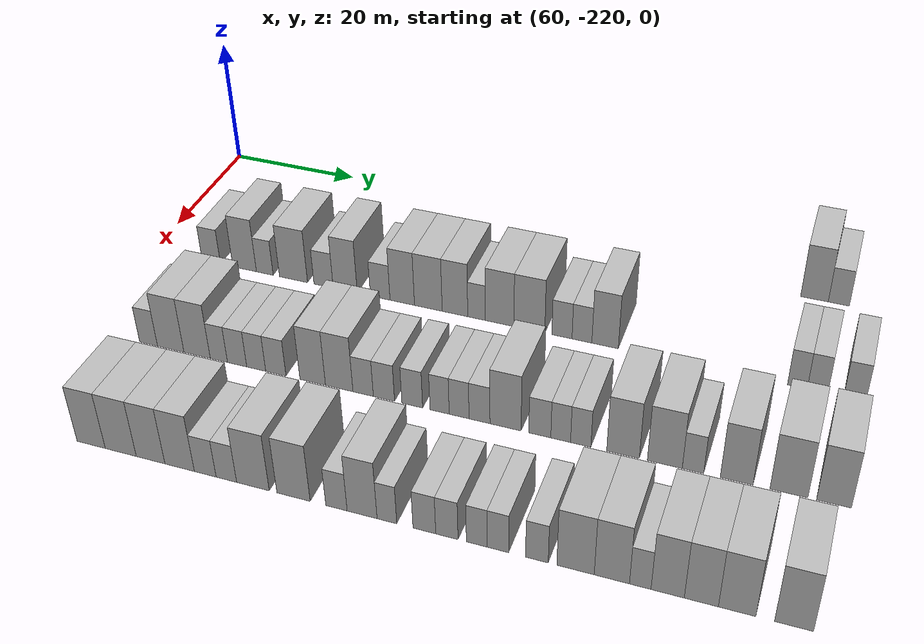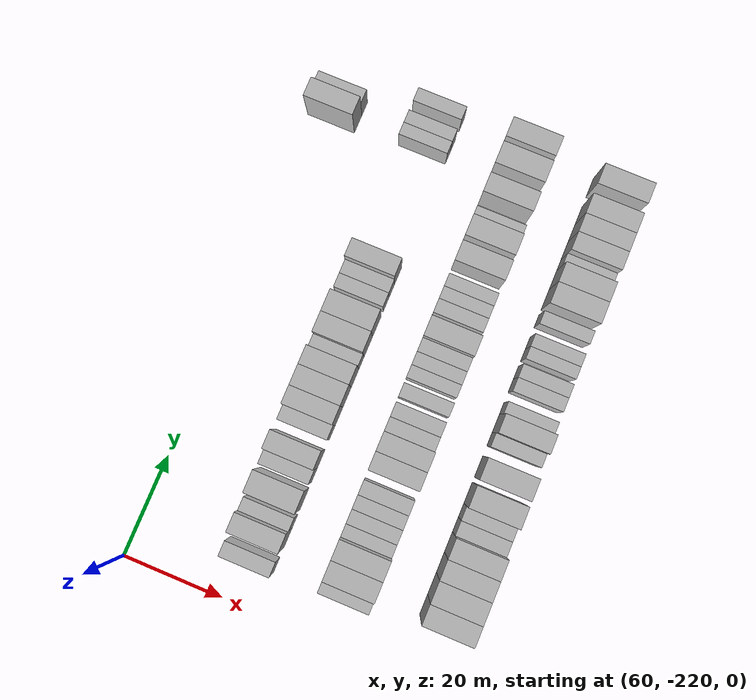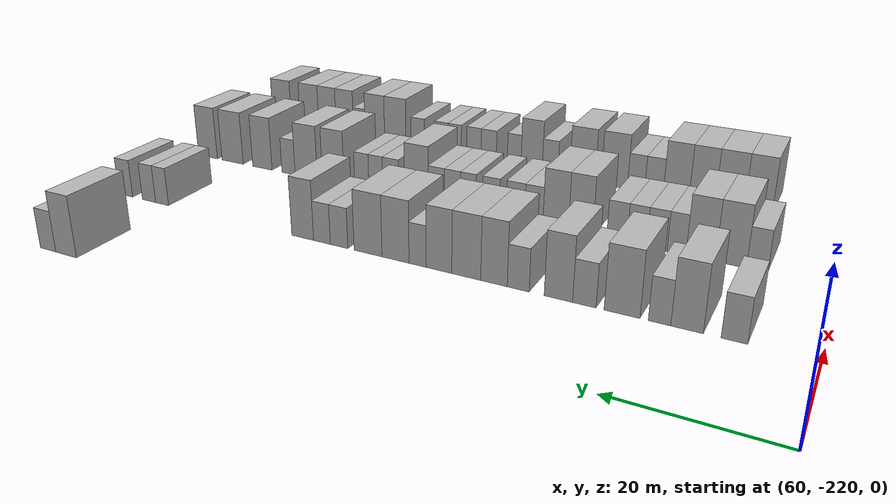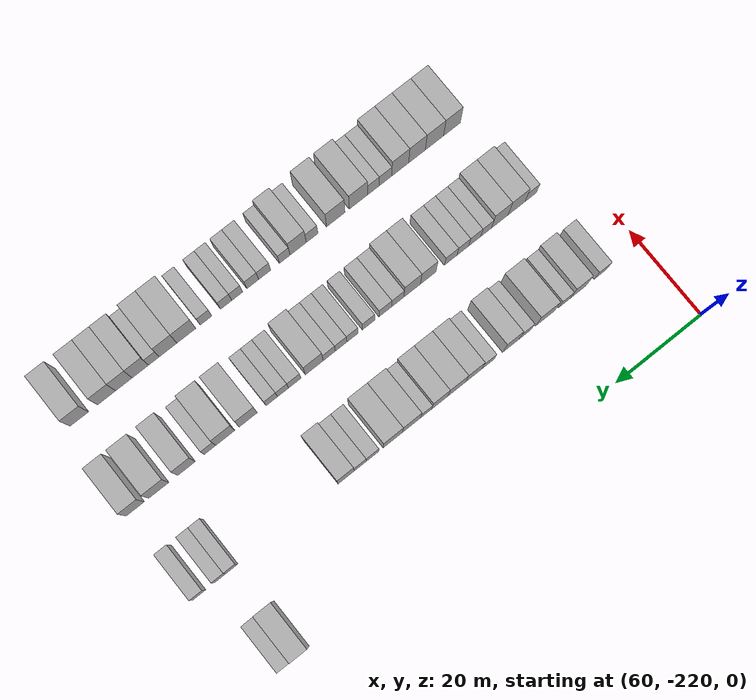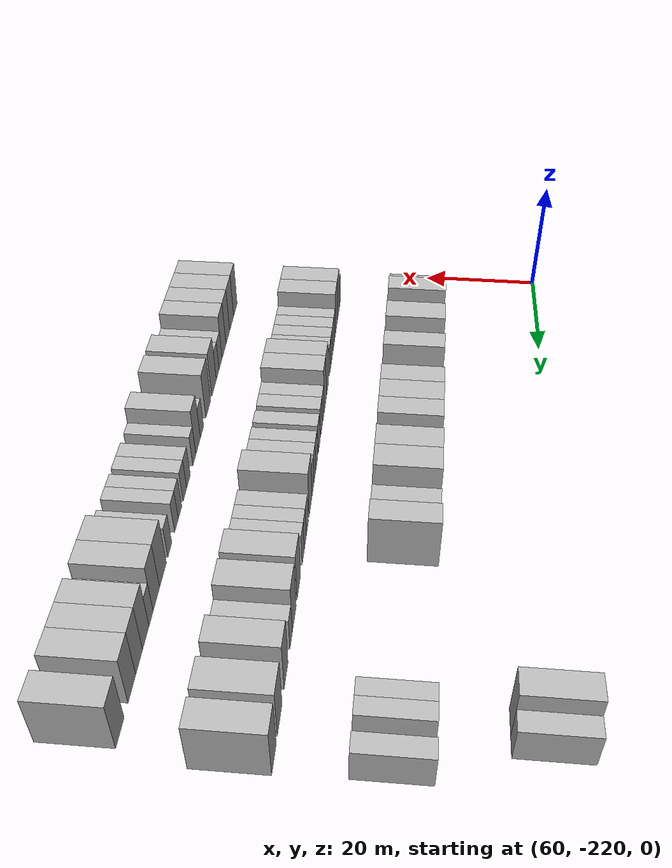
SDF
<sdf version="1.6">
 <world name="default">
  <model name="building_413">
   <static>1</static>
   <pose>63.0000 -126.3045 0 0.000000 0.000000 0.000000</pose>
   <link name="link">
    <pose>0 0 4.50 0 0 0</pose>
    <collision name="collision"><geometry><box><size>10.0000 3.8387 9.0000</size></box></geometry></collision>
    <visual name="visual">
     <cast_shadows>0</cast_shadows>
     <geometry><box><size>10.0000 3.8387 9.0000</size></box></geometry>
     <material>
      <script>
       <uri>model://HANNAS_wall/materials/scripts</uri>
       <uri>model://HANNAS_wall/materials/textures</uri>
       <name>vrc/HANNAS_wall</name>
      </script>
     </material>
    </visual>
   </link>
  </model>
  <model name="building_414">
   <static>1</static>
   <pose>63.0000 -122.9303 0 0.000000 0.000000 0.000000</pose>
   <link name="link">
    <pose>0 0 3.00 0 0 0</pose>
    <collision name="collision"><geometry><box><size>10.0000 2.9096 6.0000</size></box></geometry></collision>
    <visual name="visual">
     <cast_shadows>0</cast_shadows>
     <geometry><box><size>10.0000 2.9096 6.0000</size></box></geometry>
     <material>
      <script>
       <uri>model://HANNAS_wall/materials/scripts</uri>
       <uri>model://HANNAS_wall/materials/textures</uri>
       <name>vrc/HANNAS_wall</name>
      </script>
     </material>
    </visual>
   </link>
  </model>
  <model name="building_563">
   <static>1</static>
   <pose>82.0000 -210.6183 0 0.000000 0.000000 0.000000</pose>
   <link name="link">
    <pose>0 0 3.00 0 0 0</pose>
    <collision name="collision"><geometry><box><size>10.0000 2.9675 6.0000</size></box></geometry></collision>
    <visual name="visual">
     <cast_shadows>0</cast_shadows>
     <geometry><box><size>10.0000 2.9675 6.0000</size></box></geometry>
     <material>
      <script>
       <uri>model://HANNAS_wall/materials/scripts</uri>
       <uri>model://HANNAS_wall/materials/textures</uri>
       <name>vrc/HANNAS_wall</name>
      </script>
     </material>
    </visual>
   </link>
  </model>
  <model name="building_564">
   <static>1</static>
   <pose>82.0000 -205.2464 0 0.000000 0.000000 0.000000</pose>
   <link name="link">
    <pose>0 0 4.50 0 0 0</pose>
    <collision name="collision"><geometry><box><size>10.0000 3.7763 9.0000</size></box></geometry></collision>
    <visual name="visual">
     <cast_shadows>0</cast_shadows>
     <geometry><box><size>10.0000 3.7763 9.0000</size></box></geometry>
     <material>
      <script>
       <uri>model://HANNAS_wall/materials/scripts</uri>
       <uri>model://HANNAS_wall/materials/textures</uri>
       <name>vrc/HANNAS_wall</name>
      </script>
     </material>
    </visual>
   </link>
  </model>
  <model name="building_565">
   <static>1</static>
   <pose>82.0000 -202.0254 0 0.000000 0.000000 0.000000</pose>
   <link name="link">
    <pose>0 0 3.00 0 0 0</pose>
    <collision name="collision"><geometry><box><size>10.0000 2.6658 6.0000</size></box></geometry></collision>
    <visual name="visual">
     <cast_shadows>0</cast_shadows>
     <geometry><box><size>10.0000 2.6658 6.0000</size></box></geometry>
     <material>
      <script>
       <uri>model://HANNAS_wall/materials/scripts</uri>
       <uri>model://HANNAS_wall/materials/textures</uri>
       <name>vrc/HANNAS_wall</name>
      </script>
     </material>
    </visual>
   </link>
  </model>
  <model name="building_566">
   <static>1</static>
   <pose>82.0000 -197.4881 0 0.000000 0.000000 0.000000</pose>
   <link name="link">
    <pose>0 0 4.50 0 0 0</pose>
    <collision name="collision"><geometry><box><size>10.0000 4.4088 9.0000</size></box></geometry></collision>
    <visual name="visual">
     <cast_shadows>0</cast_shadows>
     <geometry><box><size>10.0000 4.4088 9.0000</size></box></geometry>
     <material>
      <script>
       <uri>model://HANNAS_wall/materials/scripts</uri>
       <uri>model://HANNAS_wall/materials/textures</uri>
       <name>vrc/HANNAS_wall</name>
      </script>
     </material>
    </visual>
   </link>
  </model>
  <model name="building_567">
   <static>1</static>
   <pose>82.0000 -192.7942 0 0.000000 0.000000 0.000000</pose>
   <link name="link">
    <pose>0 0 3.00 0 0 0</pose>
    <collision name="collision"><geometry><box><size>10.0000 2.9792 6.0000</size></box></geometry></collision>
    <visual name="visual">
     <cast_shadows>0</cast_shadows>
     <geometry><box><size>10.0000 2.9792 6.0000</size></box></geometry>
     <material>
      <script>
       <uri>model://HANNAS_wall/materials/scripts</uri>
       <uri>model://HANNAS_wall/materials/textures</uri>
       <name>vrc/HANNAS_wall</name>
      </script>
     </material>
    </visual>
   </link>
  </model>
  <model name="building_568">
   <static>1</static>
   <pose>82.0000 -189.4535 0 0.000000 0.000000 0.000000</pose>
   <link name="link">
    <pose>0 0 4.50 0 0 0</pose>
    <collision name="collision"><geometry><box><size>10.0000 3.7021 9.0000</size></box></geometry></collision>
    <visual name="visual">
     <cast_shadows>0</cast_shadows>
     <geometry><box><size>10.0000 3.7021 9.0000</size></box></geometry>
     <material>
      <script>
       <uri>model://HANNAS_wall/materials/scripts</uri>
       <uri>model://HANNAS_wall/materials/textures</uri>
       <name>vrc/HANNAS_wall</name>
      </script>
     </material>
    </visual>
   </link>
  </model>
  <model name="building_569">
   <static>1</static>
   <pose>82.0000 -184.1199 0 0.000000 0.000000 0.000000</pose>
   <link name="link">
    <pose>0 0 3.00 0 0 0</pose>
    <collision name="collision"><geometry><box><size>10.0000 2.9651 6.0000</size></box></geometry></collision>
    <visual name="visual">
     <cast_shadows>0</cast_shadows>
     <geometry><box><size>10.0000 2.9651 6.0000</size></box></geometry>
     <material>
      <script>
       <uri>model://HANNAS_wall/materials/scripts</uri>
       <uri>model://HANNAS_wall/materials/textures</uri>
       <name>vrc/HANNAS_wall</name>
      </script>
     </material>
    </visual>
   </link>
  </model>
  <model name="building_570">
   <static>1</static>
   <pose>82.0000 -180.7996 0 0.000000 0.000000 0.000000</pose>
   <link name="link">
    <pose>0 0 4.50 0 0 0</pose>
    <collision name="collision"><geometry><box><size>10.0000 3.6754 9.0000</size></box></geometry></collision>
    <visual name="visual">
     <cast_shadows>0</cast_shadows>
     <geometry><box><size>10.0000 3.6754 9.0000</size></box></geometry>
     <material>
      <script>
       <uri>model://HANNAS_wall/materials/scripts</uri>
       <uri>model://HANNAS_wall/materials/textures</uri>
       <name>vrc/HANNAS_wall</name>
      </script>
     </material>
    </visual>
   </link>
  </model>
  <model name="building_571">
   <static>1</static>
   <pose>82.0000 -176.9028 0 0.000000 0.000000 0.000000</pose>
   <link name="link">
    <pose>0 0 4.50 0 0 0</pose>
    <collision name="collision"><geometry><box><size>10.0000 4.1184 9.0000</size></box></geometry></collision>
    <visual name="visual">
     <cast_shadows>0</cast_shadows>
     <geometry><box><size>10.0000 4.1184 9.0000</size></box></geometry>
     <material>
      <script>
       <uri>model://HANNAS_wall/materials/scripts</uri>
       <uri>model://HANNAS_wall/materials/textures</uri>
       <name>vrc/HANNAS_wall</name>
      </script>
     </material>
    </visual>
   </link>
  </model>
  <model name="building_572">
   <static>1</static>
   <pose>82.0000 -172.9688 0 0.000000 0.000000 0.000000</pose>
   <link name="link">
    <pose>0 0 4.50 0 0 0</pose>
    <collision name="collision"><geometry><box><size>10.0000 3.7495 9.0000</size></box></geometry></collision>
    <visual name="visual">
     <cast_shadows>0</cast_shadows>
     <geometry><box><size>10.0000 3.7495 9.0000</size></box></geometry>
     <material>
      <script>
       <uri>model://HANNAS_wall/materials/scripts</uri>
       <uri>model://HANNAS_wall/materials/textures</uri>
       <name>vrc/HANNAS_wall</name>
      </script>
     </material>
    </visual>
   </link>
  </model>
  <model name="building_573">
   <static>1</static>
   <pose>82.0000 -169.8107 0 0.000000 0.000000 0.000000</pose>
   <link name="link">
    <pose>0 0 3.00 0 0 0</pose>
    <collision name="collision"><geometry><box><size>10.0000 2.5668 6.0000</size></box></geometry></collision>
    <visual name="visual">
     <cast_shadows>0</cast_shadows>
     <geometry><box><size>10.0000 2.5668 6.0000</size></box></geometry>
     <material>
      <script>
       <uri>model://HANNAS_wall/materials/scripts</uri>
       <uri>model://HANNAS_wall/materials/textures</uri>
       <name>vrc/HANNAS_wall</name>
      </script>
     </material>
    </visual>
   </link>
  </model>
  <model name="building_574">
   <static>1</static>
   <pose>82.0000 -166.4629 0 0.000000 0.000000 0.000000</pose>
   <link name="link">
    <pose>0 0 4.50 0 0 0</pose>
    <collision name="collision"><geometry><box><size>10.0000 4.1288 9.0000</size></box></geometry></collision>
    <visual name="visual">
     <cast_shadows>0</cast_shadows>
     <geometry><box><size>10.0000 4.1288 9.0000</size></box></geometry>
     <material>
      <script>
       <uri>model://HANNAS_wall/materials/scripts</uri>
       <uri>model://HANNAS_wall/materials/textures</uri>
       <name>vrc/HANNAS_wall</name>
      </script>
     </material>
    </visual>
   </link>
  </model>
  <model name="building_575">
   <static>1</static>
   <pose>82.0000 -162.2037 0 0.000000 0.000000 0.000000</pose>
   <link name="link">
    <pose>0 0 4.50 0 0 0</pose>
    <collision name="collision"><geometry><box><size>10.0000 4.3895 9.0000</size></box></geometry></collision>
    <visual name="visual">
     <cast_shadows>0</cast_shadows>
     <geometry><box><size>10.0000 4.3895 9.0000</size></box></geometry>
     <material>
      <script>
       <uri>model://HANNAS_wall/materials/scripts</uri>
       <uri>model://HANNAS_wall/materials/textures</uri>
       <name>vrc/HANNAS_wall</name>
      </script>
     </material>
    </visual>
   </link>
  </model>
  <model name="building_576">
   <static>1</static>
   <pose>82.0000 -157.5925 0 0.000000 0.000000 0.000000</pose>
   <link name="link">
    <pose>0 0 3.00 0 0 0</pose>
    <collision name="collision"><geometry><box><size>10.0000 2.8329 6.0000</size></box></geometry></collision>
    <visual name="visual">
     <cast_shadows>0</cast_shadows>
     <geometry><box><size>10.0000 2.8329 6.0000</size></box></geometry>
     <material>
      <script>
       <uri>model://HANNAS_wall/materials/scripts</uri>
       <uri>model://HANNAS_wall/materials/textures</uri>
       <name>vrc/HANNAS_wall</name>
      </script>
     </material>
    </visual>
   </link>
  </model>
  <model name="building_577">
   <static>1</static>
   <pose>82.0000 -154.7924 0 0.000000 0.000000 0.000000</pose>
   <link name="link">
    <pose>0 0 3.00 0 0 0</pose>
    <collision name="collision"><geometry><box><size>10.0000 2.7673 6.0000</size></box></geometry></collision>
    <visual name="visual">
     <cast_shadows>0</cast_shadows>
     <geometry><box><size>10.0000 2.7673 6.0000</size></box></geometry>
     <material>
      <script>
       <uri>model://HANNAS_wall/materials/scripts</uri>
       <uri>model://HANNAS_wall/materials/textures</uri>
       <name>vrc/HANNAS_wall</name>
      </script>
     </material>
    </visual>
   </link>
  </model>
  <model name="building_578">
   <static>1</static>
   <pose>82.0000 -151.5773 0 0.000000 0.000000 0.000000</pose>
   <link name="link">
    <pose>0 0 4.50 0 0 0</pose>
    <collision name="collision"><geometry><box><size>10.0000 3.6628 9.0000</size></box></geometry></collision>
    <visual name="visual">
     <cast_shadows>0</cast_shadows>
     <geometry><box><size>10.0000 3.6628 9.0000</size></box></geometry>
     <material>
      <script>
       <uri>model://HANNAS_wall/materials/scripts</uri>
       <uri>model://HANNAS_wall/materials/textures</uri>
       <name>vrc/HANNAS_wall</name>
      </script>
     </material>
    </visual>
   </link>
  </model>
  <model name="building_579">
   <static>1</static>
   <pose>82.0000 -125.9405 0 0.000000 0.000000 0.000000</pose>
   <link name="link">
    <pose>0 0 3.00 0 0 0</pose>
    <collision name="collision"><geometry><box><size>10.0000 2.5370 6.0000</size></box></geometry></collision>
    <visual name="visual">
     <cast_shadows>0</cast_shadows>
     <geometry><box><size>10.0000 2.5370 6.0000</size></box></geometry>
     <material>
      <script>
       <uri>model://HANNAS_wall/materials/scripts</uri>
       <uri>model://HANNAS_wall/materials/textures</uri>
       <name>vrc/HANNAS_wall</name>
      </script>
     </material>
    </visual>
   </link>
  </model>
  <model name="building_580">
   <static>1</static>
   <pose>82.0000 -123.3530 0 0.000000 0.000000 0.000000</pose>
   <link name="link">
    <pose>0 0 3.00 0 0 0</pose>
    <collision name="collision"><geometry><box><size>10.0000 2.6380 6.0000</size></box></geometry></collision>
    <visual name="visual">
     <cast_shadows>0</cast_shadows>
     <geometry><box><size>10.0000 2.6380 6.0000</size></box></geometry>
     <material>
      <script>
       <uri>model://HANNAS_wall/materials/scripts</uri>
       <uri>model://HANNAS_wall/materials/textures</uri>
       <name>vrc/HANNAS_wall</name>
      </script>
     </material>
    </visual>
   </link>
  </model>
  <model name="building_581">
   <static>1</static>
   <pose>82.0000 -118.6363 0 0.000000 0.000000 0.000000</pose>
   <link name="link">
    <pose>0 0 3.00 0 0 0</pose>
    <collision name="collision"><geometry><box><size>10.0000 2.7955 6.0000</size></box></geometry></collision>
    <visual name="visual">
     <cast_shadows>0</cast_shadows>
     <geometry><box><size>10.0000 2.7955 6.0000</size></box></geometry>
     <material>
      <script>
       <uri>model://HANNAS_wall/materials/scripts</uri>
       <uri>model://HANNAS_wall/materials/textures</uri>
       <name>vrc/HANNAS_wall</name>
      </script>
     </material>
    </visual>
   </link>
  </model>
  <model name="building_740">
   <static>1</static>
   <pose>101.0000 -209.8270 0 0.000000 0.000000 0.000000</pose>
   <link name="link">
    <pose>0 0 3.00 0 0 0</pose>
    <collision name="collision"><geometry><box><size>10.0000 2.7113 6.0000</size></box></geometry></collision>
    <visual name="visual">
     <cast_shadows>0</cast_shadows>
     <geometry><box><size>10.0000 2.7113 6.0000</size></box></geometry>
     <material>
      <script>
       <uri>model://HANNAS_wall/materials/scripts</uri>
       <uri>model://HANNAS_wall/materials/textures</uri>
       <name>vrc/HANNAS_wall</name>
      </script>
     </material>
    </visual>
   </link>
  </model>
  <model name="building_741">
   <static>1</static>
   <pose>101.0000 -206.4743 0 0.000000 0.000000 0.000000</pose>
   <link name="link">
    <pose>0 0 4.50 0 0 0</pose>
    <collision name="collision"><geometry><box><size>10.0000 3.9941 9.0000</size></box></geometry></collision>
    <visual name="visual">
     <cast_shadows>0</cast_shadows>
     <geometry><box><size>10.0000 3.9941 9.0000</size></box></geometry>
     <material>
      <script>
       <uri>model://HANNAS_wall/materials/scripts</uri>
       <uri>model://HANNAS_wall/materials/textures</uri>
       <name>vrc/HANNAS_wall</name>
      </script>
     </material>
    </visual>
   </link>
  </model>
  <model name="building_742">
   <static>1</static>
   <pose>101.0000 -202.5107 0 0.000000 0.000000 0.000000</pose>
   <link name="link">
    <pose>0 0 4.50 0 0 0</pose>
    <collision name="collision"><geometry><box><size>10.0000 3.9332 9.0000</size></box></geometry></collision>
    <visual name="visual">
     <cast_shadows>0</cast_shadows>
     <geometry><box><size>10.0000 3.9332 9.0000</size></box></geometry>
     <material>
      <script>
       <uri>model://HANNAS_wall/materials/scripts</uri>
       <uri>model://HANNAS_wall/materials/textures</uri>
       <name>vrc/HANNAS_wall</name>
      </script>
     </material>
    </visual>
   </link>
  </model>
  <model name="building_743">
   <static>1</static>
   <pose>101.0000 -199.2715 0 0.000000 0.000000 0.000000</pose>
   <link name="link">
    <pose>0 0 3.00 0 0 0</pose>
    <collision name="collision"><geometry><box><size>10.0000 2.5451 6.0000</size></box></geometry></collision>
    <visual name="visual">
     <cast_shadows>0</cast_shadows>
     <geometry><box><size>10.0000 2.5451 6.0000</size></box></geometry>
     <material>
      <script>
       <uri>model://HANNAS_wall/materials/scripts</uri>
       <uri>model://HANNAS_wall/materials/textures</uri>
       <name>vrc/HANNAS_wall</name>
      </script>
     </material>
    </visual>
   </link>
  </model>
  <model name="building_744">
   <static>1</static>
   <pose>101.0000 -196.5921 0 0.000000 0.000000 0.000000</pose>
   <link name="link">
    <pose>0 0 3.00 0 0 0</pose>
    <collision name="collision"><geometry><box><size>10.0000 2.8138 6.0000</size></box></geometry></collision>
    <visual name="visual">
     <cast_shadows>0</cast_shadows>
     <geometry><box><size>10.0000 2.8138 6.0000</size></box></geometry>
     <material>
      <script>
       <uri>model://HANNAS_wall/materials/scripts</uri>
       <uri>model://HANNAS_wall/materials/textures</uri>
       <name>vrc/HANNAS_wall</name>
      </script>
     </material>
    </visual>
   </link>
  </model>
  <model name="building_745">
   <static>1</static>
   <pose>101.0000 -193.8060 0 0.000000 0.000000 0.000000</pose>
   <link name="link">
    <pose>0 0 3.00 0 0 0</pose>
    <collision name="collision"><geometry><box><size>10.0000 2.7584 6.0000</size></box></geometry></collision>
    <visual name="visual">
     <cast_shadows>0</cast_shadows>
     <geometry><box><size>10.0000 2.7584 6.0000</size></box></geometry>
     <material>
      <script>
       <uri>model://HANNAS_wall/materials/scripts</uri>
       <uri>model://HANNAS_wall/materials/textures</uri>
       <name>vrc/HANNAS_wall</name>
      </script>
     </material>
    </visual>
   </link>
  </model>
  <model name="building_746">
   <static>1</static>
   <pose>101.0000 -190.9632 0 0.000000 0.000000 0.000000</pose>
   <link name="link">
    <pose>0 0 3.00 0 0 0</pose>
    <collision name="collision"><geometry><box><size>10.0000 2.9272 6.0000</size></box></geometry></collision>
    <visual name="visual">
     <cast_shadows>0</cast_shadows>
     <geometry><box><size>10.0000 2.9272 6.0000</size></box></geometry>
     <material>
      <script>
       <uri>model://HANNAS_wall/materials/scripts</uri>
       <uri>model://HANNAS_wall/materials/textures</uri>
       <name>vrc/HANNAS_wall</name>
      </script>
     </material>
    </visual>
   </link>
  </model>
  <model name="building_747">
   <static>1</static>
   <pose>101.0000 -185.6898 0 0.000000 0.000000 0.000000</pose>
   <link name="link">
    <pose>0 0 4.50 0 0 0</pose>
    <collision name="collision"><geometry><box><size>10.0000 3.6197 9.0000</size></box></geometry></collision>
    <visual name="visual">
     <cast_shadows>0</cast_shadows>
     <geometry><box><size>10.0000 3.6197 9.0000</size></box></geometry>
     <material>
      <script>
       <uri>model://HANNAS_wall/materials/scripts</uri>
       <uri>model://HANNAS_wall/materials/textures</uri>
       <name>vrc/HANNAS_wall</name>
      </script>
     </material>
    </visual>
   </link>
  </model>
  <model name="building_748">
   <static>1</static>
   <pose>101.0000 -181.9501 0 0.000000 0.000000 0.000000</pose>
   <link name="link">
    <pose>0 0 4.50 0 0 0</pose>
    <collision name="collision"><geometry><box><size>10.0000 3.8598 9.0000</size></box></geometry></collision>
    <visual name="visual">
     <cast_shadows>0</cast_shadows>
     <geometry><box><size>10.0000 3.8598 9.0000</size></box></geometry>
     <material>
      <script>
       <uri>model://HANNAS_wall/materials/scripts</uri>
       <uri>model://HANNAS_wall/materials/textures</uri>
       <name>vrc/HANNAS_wall</name>
      </script>
     </material>
    </visual>
   </link>
  </model>
  <model name="building_749">
   <static>1</static>
   <pose>101.0000 -178.6012 0 0.000000 0.000000 0.000000</pose>
   <link name="link">
    <pose>0 0 3.00 0 0 0</pose>
    <collision name="collision"><geometry><box><size>10.0000 2.8381 6.0000</size></box></geometry></collision>
    <visual name="visual">
     <cast_shadows>0</cast_shadows>
     <geometry><box><size>10.0000 2.8381 6.0000</size></box></geometry>
     <material>
      <script>
       <uri>model://HANNAS_wall/materials/scripts</uri>
       <uri>model://HANNAS_wall/materials/textures</uri>
       <name>vrc/HANNAS_wall</name>
      </script>
     </material>
    </visual>
   </link>
  </model>
  <model name="building_750">
   <static>1</static>
   <pose>101.0000 -175.7193 0 0.000000 0.000000 0.000000</pose>
   <link name="link">
    <pose>0 0 3.00 0 0 0</pose>
    <collision name="collision"><geometry><box><size>10.0000 2.9258 6.0000</size></box></geometry></collision>
    <visual name="visual">
     <cast_shadows>0</cast_shadows>
     <geometry><box><size>10.0000 2.9258 6.0000</size></box></geometry>
     <material>
      <script>
       <uri>model://HANNAS_wall/materials/scripts</uri>
       <uri>model://HANNAS_wall/materials/textures</uri>
       <name>vrc/HANNAS_wall</name>
      </script>
     </material>
    </visual>
   </link>
  </model>
  <model name="building_751">
   <static>1</static>
   <pose>101.0000 -171.8413 0 0.000000 0.000000 0.000000</pose>
   <link name="link">
    <pose>0 0 3.00 0 0 0</pose>
    <collision name="collision"><geometry><box><size>10.0000 2.8303 6.0000</size></box></geometry></collision>
    <visual name="visual">
     <cast_shadows>0</cast_shadows>
     <geometry><box><size>10.0000 2.8303 6.0000</size></box></geometry>
     <material>
      <script>
       <uri>model://HANNAS_wall/materials/scripts</uri>
       <uri>model://HANNAS_wall/materials/textures</uri>
       <name>vrc/HANNAS_wall</name>
      </script>
     </material>
    </visual>
   </link>
  </model>
  <model name="building_752">
   <static>1</static>
   <pose>101.0000 -168.1362 0 0.000000 0.000000 0.000000</pose>
   <link name="link">
    <pose>0 0 3.00 0 0 0</pose>
    <collision name="collision"><geometry><box><size>10.0000 2.5797 6.0000</size></box></geometry></collision>
    <visual name="visual">
     <cast_shadows>0</cast_shadows>
     <geometry><box><size>10.0000 2.5797 6.0000</size></box></geometry>
     <material>
      <script>
       <uri>model://HANNAS_wall/materials/scripts</uri>
       <uri>model://HANNAS_wall/materials/textures</uri>
       <name>vrc/HANNAS_wall</name>
      </script>
     </material>
    </visual>
   </link>
  </model>
  <model name="building_753">
   <static>1</static>
   <pose>101.0000 -165.5204 0 0.000000 0.000000 0.000000</pose>
   <link name="link">
    <pose>0 0 3.00 0 0 0</pose>
    <collision name="collision"><geometry><box><size>10.0000 2.6520 6.0000</size></box></geometry></collision>
    <visual name="visual">
     <cast_shadows>0</cast_shadows>
     <geometry><box><size>10.0000 2.6520 6.0000</size></box></geometry>
     <material>
      <script>
       <uri>model://HANNAS_wall/materials/scripts</uri>
       <uri>model://HANNAS_wall/materials/textures</uri>
       <name>vrc/HANNAS_wall</name>
      </script>
     </material>
    </visual>
   </link>
  </model>
  <model name="building_754">
   <static>1</static>
   <pose>101.0000 -162.8057 0 0.000000 0.000000 0.000000</pose>
   <link name="link">
    <pose>0 0 3.00 0 0 0</pose>
    <collision name="collision"><geometry><box><size>10.0000 2.7774 6.0000</size></box></geometry></collision>
    <visual name="visual">
     <cast_shadows>0</cast_shadows>
     <geometry><box><size>10.0000 2.7774 6.0000</size></box></geometry>
     <material>
      <script>
       <uri>model://HANNAS_wall/materials/scripts</uri>
       <uri>model://HANNAS_wall/materials/textures</uri>
       <name>vrc/HANNAS_wall</name>
      </script>
     </material>
    </visual>
   </link>
  </model>
  <model name="building_755">
   <static>1</static>
   <pose>101.0000 -159.3742 0 0.000000 0.000000 0.000000</pose>
   <link name="link">
    <pose>0 0 4.50 0 0 0</pose>
    <collision name="collision"><geometry><box><size>10.0000 4.0855 9.0000</size></box></geometry></collision>
    <visual name="visual">
     <cast_shadows>0</cast_shadows>
     <geometry><box><size>10.0000 4.0855 9.0000</size></box></geometry>
     <material>
      <script>
       <uri>model://HANNAS_wall/materials/scripts</uri>
       <uri>model://HANNAS_wall/materials/textures</uri>
       <name>vrc/HANNAS_wall</name>
      </script>
     </material>
    </visual>
   </link>
  </model>
  <model name="building_756">
   <static>1</static>
   <pose>101.0000 -154.9066 0 0.000000 0.000000 0.000000</pose>
   <link name="link">
    <pose>0 0 3.00 0 0 0</pose>
    <collision name="collision"><geometry><box><size>10.0000 2.8497 6.0000</size></box></geometry></collision>
    <visual name="visual">
     <cast_shadows>0</cast_shadows>
     <geometry><box><size>10.0000 2.8497 6.0000</size></box></geometry>
     <material>
      <script>
       <uri>model://HANNAS_wall/materials/scripts</uri>
       <uri>model://HANNAS_wall/materials/textures</uri>
       <name>vrc/HANNAS_wall</name>
      </script>
     </material>
    </visual>
   </link>
  </model>
  <model name="building_757">
   <static>1</static>
   <pose>101.0000 -152.2166 0 0.000000 0.000000 0.000000</pose>
   <link name="link">
    <pose>0 0 3.00 0 0 0</pose>
    <collision name="collision"><geometry><box><size>10.0000 2.5304 6.0000</size></box></geometry></collision>
    <visual name="visual">
     <cast_shadows>0</cast_shadows>
     <geometry><box><size>10.0000 2.5304 6.0000</size></box></geometry>
     <material>
      <script>
       <uri>model://HANNAS_wall/materials/scripts</uri>
       <uri>model://HANNAS_wall/materials/textures</uri>
       <name>vrc/HANNAS_wall</name>
      </script>
     </material>
    </visual>
   </link>
  </model>
  <model name="building_758">
   <static>1</static>
   <pose>101.0000 -149.6558 0 0.000000 0.000000 0.000000</pose>
   <link name="link">
    <pose>0 0 3.00 0 0 0</pose>
    <collision name="collision"><geometry><box><size>10.0000 2.5912 6.0000</size></box></geometry></collision>
    <visual name="visual">
     <cast_shadows>0</cast_shadows>
     <geometry><box><size>10.0000 2.5912 6.0000</size></box></geometry>
     <material>
      <script>
       <uri>model://HANNAS_wall/materials/scripts</uri>
       <uri>model://HANNAS_wall/materials/textures</uri>
       <name>vrc/HANNAS_wall</name>
      </script>
     </material>
    </visual>
   </link>
  </model>
  <model name="building_759">
   <static>1</static>
   <pose>101.0000 -144.3181 0 0.000000 0.000000 0.000000</pose>
   <link name="link">
    <pose>0 0 4.50 0 0 0</pose>
    <collision name="collision"><geometry><box><size>10.0000 4.0841 9.0000</size></box></geometry></collision>
    <visual name="visual">
     <cast_shadows>0</cast_shadows>
     <geometry><box><size>10.0000 4.0841 9.0000</size></box></geometry>
     <material>
      <script>
       <uri>model://HANNAS_wall/materials/scripts</uri>
       <uri>model://HANNAS_wall/materials/textures</uri>
       <name>vrc/HANNAS_wall</name>
      </script>
     </material>
    </visual>
   </link>
  </model>
  <model name="building_760">
   <static>1</static>
   <pose>101.0000 -139.1266 0 0.000000 0.000000 0.000000</pose>
   <link name="link">
    <pose>0 0 4.50 0 0 0</pose>
    <collision name="collision"><geometry><box><size>10.0000 4.2990 9.0000</size></box></geometry></collision>
    <visual name="visual">
     <cast_shadows>0</cast_shadows>
     <geometry><box><size>10.0000 4.2990 9.0000</size></box></geometry>
     <material>
      <script>
       <uri>model://HANNAS_wall/materials/scripts</uri>
       <uri>model://HANNAS_wall/materials/textures</uri>
       <name>vrc/HANNAS_wall</name>
      </script>
     </material>
    </visual>
   </link>
  </model>
  <model name="building_761">
   <static>1</static>
   <pose>101.0000 -135.6710 0 0.000000 0.000000 0.000000</pose>
   <link name="link">
    <pose>0 0 3.00 0 0 0</pose>
    <collision name="collision"><geometry><box><size>10.0000 2.6120 6.0000</size></box></geometry></collision>
    <visual name="visual">
     <cast_shadows>0</cast_shadows>
     <geometry><box><size>10.0000 2.6120 6.0000</size></box></geometry>
     <material>
      <script>
       <uri>model://HANNAS_wall/materials/scripts</uri>
       <uri>model://HANNAS_wall/materials/textures</uri>
       <name>vrc/HANNAS_wall</name>
      </script>
     </material>
    </visual>
   </link>
  </model>
  <model name="building_762">
   <static>1</static>
   <pose>101.0000 -130.3977 0 0.000000 0.000000 0.000000</pose>
   <link name="link">
    <pose>0 0 4.50 0 0 0</pose>
    <collision name="collision"><geometry><box><size>10.0000 3.9348 9.0000</size></box></geometry></collision>
    <visual name="visual">
     <cast_shadows>0</cast_shadows>
     <geometry><box><size>10.0000 3.9348 9.0000</size></box></geometry>
     <material>
      <script>
       <uri>model://HANNAS_wall/materials/scripts</uri>
       <uri>model://HANNAS_wall/materials/textures</uri>
       <name>vrc/HANNAS_wall</name>
      </script>
     </material>
    </visual>
   </link>
  </model>
  <model name="building_763">
   <static>1</static>
   <pose>101.0000 -124.1956 0 0.000000 0.000000 0.000000</pose>
   <link name="link">
    <pose>0 0 4.50 0 0 0</pose>
    <collision name="collision"><geometry><box><size>10.0000 4.4694 9.0000</size></box></geometry></collision>
    <visual name="visual">
     <cast_shadows>0</cast_shadows>
     <geometry><box><size>10.0000 4.4694 9.0000</size></box></geometry>
     <material>
      <script>
       <uri>model://HANNAS_wall/materials/scripts</uri>
       <uri>model://HANNAS_wall/materials/textures</uri>
       <name>vrc/HANNAS_wall</name>
      </script>
     </material>
    </visual>
   </link>
  </model>
  <model name="building_764">
   <static>1</static>
   <pose>101.0000 -118.9436 0 0.000000 0.000000 0.000000</pose>
   <link name="link">
    <pose>0 0 4.50 0 0 0</pose>
    <collision name="collision"><geometry><box><size>10.0000 4.0346 9.0000</size></box></geometry></collision>
    <visual name="visual">
     <cast_shadows>0</cast_shadows>
     <geometry><box><size>10.0000 4.0346 9.0000</size></box></geometry>
     <material>
      <script>
       <uri>model://HANNAS_wall/materials/scripts</uri>
       <uri>model://HANNAS_wall/materials/textures</uri>
       <name>vrc/HANNAS_wall</name>
      </script>
     </material>
    </visual>
   </link>
  </model>
  <model name="building_913">
   <static>1</static>
   <pose>120.0000 -206.6844 0 0.000000 0.000000 0.000000</pose>
   <link name="link">
    <pose>0 0 4.50 0 0 0</pose>
    <collision name="collision"><geometry><box><size>10.0000 3.9668 9.0000</size></box></geometry></collision>
    <visual name="visual">
     <cast_shadows>0</cast_shadows>
     <geometry><box><size>10.0000 3.9668 9.0000</size></box></geometry>
     <material>
      <script>
       <uri>model://HANNAS_wall/materials/scripts</uri>
       <uri>model://HANNAS_wall/materials/textures</uri>
       <name>vrc/HANNAS_wall</name>
      </script>
     </material>
    </visual>
   </link>
  </model>
  <model name="building_914">
   <static>1</static>
   <pose>120.0000 -202.5422 0 0.000000 0.000000 0.000000</pose>
   <link name="link">
    <pose>0 0 4.50 0 0 0</pose>
    <collision name="collision"><geometry><box><size>10.0000 4.3176 9.0000</size></box></geometry></collision>
    <visual name="visual">
     <cast_shadows>0</cast_shadows>
     <geometry><box><size>10.0000 4.3176 9.0000</size></box></geometry>
     <material>
      <script>
       <uri>model://HANNAS_wall/materials/scripts</uri>
       <uri>model://HANNAS_wall/materials/textures</uri>
       <name>vrc/HANNAS_wall</name>
      </script>
     </material>
    </visual>
   </link>
  </model>
  <model name="building_915">
   <static>1</static>
   <pose>120.0000 -198.4149 0 0.000000 0.000000 0.000000</pose>
   <link name="link">
    <pose>0 0 4.50 0 0 0</pose>
    <collision name="collision"><geometry><box><size>10.0000 3.9370 9.0000</size></box></geometry></collision>
    <visual name="visual">
     <cast_shadows>0</cast_shadows>
     <geometry><box><size>10.0000 3.9370 9.0000</size></box></geometry>
     <material>
      <script>
       <uri>model://HANNAS_wall/materials/scripts</uri>
       <uri>model://HANNAS_wall/materials/textures</uri>
       <name>vrc/HANNAS_wall</name>
      </script>
     </material>
    </visual>
   </link>
  </model>
  <model name="building_916">
   <static>1</static>
   <pose>120.0000 -194.4507 0 0.000000 0.000000 0.000000</pose>
   <link name="link">
    <pose>0 0 4.50 0 0 0</pose>
    <collision name="collision"><geometry><box><size>10.0000 3.9915 9.0000</size></box></geometry></collision>
    <visual name="visual">
     <cast_shadows>0</cast_shadows>
     <geometry><box><size>10.0000 3.9915 9.0000</size></box></geometry>
     <material>
      <script>
       <uri>model://HANNAS_wall/materials/scripts</uri>
       <uri>model://HANNAS_wall/materials/textures</uri>
       <name>vrc/HANNAS_wall</name>
      </script>
     </material>
    </visual>
   </link>
  </model>
  <model name="building_917">
   <static>1</static>
   <pose>120.0000 -190.9921 0 0.000000 0.000000 0.000000</pose>
   <link name="link">
    <pose>0 0 3.00 0 0 0</pose>
    <collision name="collision"><geometry><box><size>10.0000 2.9258 6.0000</size></box></geometry></collision>
    <visual name="visual">
     <cast_shadows>0</cast_shadows>
     <geometry><box><size>10.0000 2.9258 6.0000</size></box></geometry>
     <material>
      <script>
       <uri>model://HANNAS_wall/materials/scripts</uri>
       <uri>model://HANNAS_wall/materials/textures</uri>
       <name>vrc/HANNAS_wall</name>
      </script>
     </material>
    </visual>
   </link>
  </model>
  <model name="building_918">
   <static>1</static>
   <pose>120.0000 -188.1652 0 0.000000 0.000000 0.000000</pose>
   <link name="link">
    <pose>0 0 3.00 0 0 0</pose>
    <collision name="collision"><geometry><box><size>10.0000 2.7280 6.0000</size></box></geometry></collision>
    <visual name="visual">
     <cast_shadows>0</cast_shadows>
     <geometry><box><size>10.0000 2.7280 6.0000</size></box></geometry>
     <material>
      <script>
       <uri>model://HANNAS_wall/materials/scripts</uri>
       <uri>model://HANNAS_wall/materials/textures</uri>
       <name>vrc/HANNAS_wall</name>
      </script>
     </material>
    </visual>
   </link>
  </model>
  <model name="building_919">
   <static>1</static>
   <pose>120.0000 -184.6567 0 0.000000 0.000000 0.000000</pose>
   <link name="link">
    <pose>0 0 4.50 0 0 0</pose>
    <collision name="collision"><geometry><box><size>10.0000 4.2889 9.0000</size></box></geometry></collision>
    <visual name="visual">
     <cast_shadows>0</cast_shadows>
     <geometry><box><size>10.0000 4.2889 9.0000</size></box></geometry>
     <material>
      <script>
       <uri>model://HANNAS_wall/materials/scripts</uri>
       <uri>model://HANNAS_wall/materials/textures</uri>
       <name>vrc/HANNAS_wall</name>
      </script>
     </material>
    </visual>
   </link>
  </model>
  <model name="building_920">
   <static>1</static>
   <pose>120.0000 -179.3630 0 0.000000 0.000000 0.000000</pose>
   <link name="link">
    <pose>0 0 4.50 0 0 0</pose>
    <collision name="collision"><geometry><box><size>10.0000 4.2987 9.0000</size></box></geometry></collision>
    <visual name="visual">
     <cast_shadows>0</cast_shadows>
     <geometry><box><size>10.0000 4.2987 9.0000</size></box></geometry>
     <material>
      <script>
       <uri>model://HANNAS_wall/materials/scripts</uri>
       <uri>model://HANNAS_wall/materials/textures</uri>
       <name>vrc/HANNAS_wall</name>
      </script>
     </material>
    </visual>
   </link>
  </model>
  <model name="building_921">
   <static>1</static>
   <pose>120.0000 -173.8593 0 0.000000 0.000000 0.000000</pose>
   <link name="link">
    <pose>0 0 3.00 0 0 0</pose>
    <collision name="collision"><geometry><box><size>10.0000 2.7088 6.0000</size></box></geometry></collision>
    <visual name="visual">
     <cast_shadows>0</cast_shadows>
     <geometry><box><size>10.0000 2.7088 6.0000</size></box></geometry>
     <material>
      <script>
       <uri>model://HANNAS_wall/materials/scripts</uri>
       <uri>model://HANNAS_wall/materials/textures</uri>
       <name>vrc/HANNAS_wall</name>
      </script>
     </material>
    </visual>
   </link>
  </model>
  <model name="building_922">
   <static>1</static>
   <pose>120.0000 -170.6250 0 0.000000 0.000000 0.000000</pose>
   <link name="link">
    <pose>0 0 4.50 0 0 0</pose>
    <collision name="collision"><geometry><box><size>10.0000 3.7598 9.0000</size></box></geometry></collision>
    <visual name="visual">
     <cast_shadows>0</cast_shadows>
     <geometry><box><size>10.0000 3.7598 9.0000</size></box></geometry>
     <material>
      <script>
       <uri>model://HANNAS_wall/materials/scripts</uri>
       <uri>model://HANNAS_wall/materials/textures</uri>
       <name>vrc/HANNAS_wall</name>
      </script>
     </material>
    </visual>
   </link>
  </model>
  <model name="building_923">
   <static>1</static>
   <pose>120.0000 -167.5192 0 0.000000 0.000000 0.000000</pose>
   <link name="link">
    <pose>0 0 3.00 0 0 0</pose>
    <collision name="collision"><geometry><box><size>10.0000 2.4517 6.0000</size></box></geometry></collision>
    <visual name="visual">
     <cast_shadows>0</cast_shadows>
     <geometry><box><size>10.0000 2.4517 6.0000</size></box></geometry>
     <material>
      <script>
       <uri>model://HANNAS_wall/materials/scripts</uri>
       <uri>model://HANNAS_wall/materials/textures</uri>
       <name>vrc/HANNAS_wall</name>
      </script>
     </material>
    </visual>
   </link>
  </model>
  <model name="building_924">
   <static>1</static>
   <pose>120.0000 -162.9001 0 0.000000 0.000000 0.000000</pose>
   <link name="link">
    <pose>0 0 3.00 0 0 0</pose>
    <collision name="collision"><geometry><box><size>10.0000 2.7865 6.0000</size></box></geometry></collision>
    <visual name="visual">
     <cast_shadows>0</cast_shadows>
     <geometry><box><size>10.0000 2.7865 6.0000</size></box></geometry>
     <material>
      <script>
       <uri>model://HANNAS_wall/materials/scripts</uri>
       <uri>model://HANNAS_wall/materials/textures</uri>
       <name>vrc/HANNAS_wall</name>
      </script>
     </material>
    </visual>
   </link>
  </model>
  <model name="building_925">
   <static>1</static>
   <pose>120.0000 -160.1533 0 0.000000 0.000000 0.000000</pose>
   <link name="link">
    <pose>0 0 3.00 0 0 0</pose>
    <collision name="collision"><geometry><box><size>10.0000 2.7071 6.0000</size></box></geometry></collision>
    <visual name="visual">
     <cast_shadows>0</cast_shadows>
     <geometry><box><size>10.0000 2.7071 6.0000</size></box></geometry>
     <material>
      <script>
       <uri>model://HANNAS_wall/materials/scripts</uri>
       <uri>model://HANNAS_wall/materials/textures</uri>
       <name>vrc/HANNAS_wall</name>
      </script>
     </material>
    </visual>
   </link>
  </model>
  <model name="building_926">
   <static>1</static>
   <pose>120.0000 -156.5559 0 0.000000 0.000000 0.000000</pose>
   <link name="link">
    <pose>0 0 3.00 0 0 0</pose>
    <collision name="collision"><geometry><box><size>10.0000 2.4876 6.0000</size></box></geometry></collision>
    <visual name="visual">
     <cast_shadows>0</cast_shadows>
     <geometry><box><size>10.0000 2.4876 6.0000</size></box></geometry>
     <material>
      <script>
       <uri>model://HANNAS_wall/materials/scripts</uri>
       <uri>model://HANNAS_wall/materials/textures</uri>
       <name>vrc/HANNAS_wall</name>
      </script>
     </material>
    </visual>
   </link>
  </model>
  <model name="building_927">
   <static>1</static>
   <pose>120.0000 -154.0334 0 0.000000 0.000000 0.000000</pose>
   <link name="link">
    <pose>0 0 3.00 0 0 0</pose>
    <collision name="collision"><geometry><box><size>10.0000 2.5574 6.0000</size></box></geometry></collision>
    <visual name="visual">
     <cast_shadows>0</cast_shadows>
     <geometry><box><size>10.0000 2.5574 6.0000</size></box></geometry>
     <material>
      <script>
       <uri>model://HANNAS_wall/materials/scripts</uri>
       <uri>model://HANNAS_wall/materials/textures</uri>
       <name>vrc/HANNAS_wall</name>
      </script>
     </material>
    </visual>
   </link>
  </model>
  <model name="building_928">
   <static>1</static>
   <pose>120.0000 -149.4300 0 0.000000 0.000000 0.000000</pose>
   <link name="link">
    <pose>0 0 3.00 0 0 0</pose>
    <collision name="collision"><geometry><box><size>10.0000 2.6493 6.0000</size></box></geometry></collision>
    <visual name="visual">
     <cast_shadows>0</cast_shadows>
     <geometry><box><size>10.0000 2.6493 6.0000</size></box></geometry>
     <material>
      <script>
       <uri>model://HANNAS_wall/materials/scripts</uri>
       <uri>model://HANNAS_wall/materials/textures</uri>
       <name>vrc/HANNAS_wall</name>
      </script>
     </material>
    </visual>
   </link>
  </model>
  <model name="building_929">
   <static>1</static>
   <pose>120.0000 -144.9519 0 0.000000 0.000000 0.000000</pose>
   <link name="link">
    <pose>0 0 4.50 0 0 0</pose>
    <collision name="collision"><geometry><box><size>10.0000 4.3070 9.0000</size></box></geometry></collision>
    <visual name="visual">
     <cast_shadows>0</cast_shadows>
     <geometry><box><size>10.0000 4.3070 9.0000</size></box></geometry>
     <material>
      <script>
       <uri>model://HANNAS_wall/materials/scripts</uri>
       <uri>model://HANNAS_wall/materials/textures</uri>
       <name>vrc/HANNAS_wall</name>
      </script>
     </material>
    </visual>
   </link>
  </model>
  <model name="building_930">
   <static>1</static>
   <pose>120.0000 -140.7977 0 0.000000 0.000000 0.000000</pose>
   <link name="link">
    <pose>0 0 4.50 0 0 0</pose>
    <collision name="collision"><geometry><box><size>10.0000 4.0014 9.0000</size></box></geometry></collision>
    <visual name="visual">
     <cast_shadows>0</cast_shadows>
     <geometry><box><size>10.0000 4.0014 9.0000</size></box></geometry>
     <material>
      <script>
       <uri>model://HANNAS_wall/materials/scripts</uri>
       <uri>model://HANNAS_wall/materials/textures</uri>
       <name>vrc/HANNAS_wall</name>
      </script>
     </material>
    </visual>
   </link>
  </model>
  <model name="building_931">
   <static>1</static>
   <pose>120.0000 -137.5857 0 0.000000 0.000000 0.000000</pose>
   <link name="link">
    <pose>0 0 3.00 0 0 0</pose>
    <collision name="collision"><geometry><box><size>10.0000 2.4227 6.0000</size></box></geometry></collision>
    <visual name="visual">
     <cast_shadows>0</cast_shadows>
     <geometry><box><size>10.0000 2.4227 6.0000</size></box></geometry>
     <material>
      <script>
       <uri>model://HANNAS_wall/materials/scripts</uri>
       <uri>model://HANNAS_wall/materials/textures</uri>
       <name>vrc/HANNAS_wall</name>
      </script>
     </material>
    </visual>
   </link>
  </model>
  <model name="building_932">
   <static>1</static>
   <pose>120.0000 -134.5248 0 0.000000 0.000000 0.000000</pose>
   <link name="link">
    <pose>0 0 4.50 0 0 0</pose>
    <collision name="collision"><geometry><box><size>10.0000 3.6990 9.0000</size></box></geometry></collision>
    <visual name="visual">
     <cast_shadows>0</cast_shadows>
     <geometry><box><size>10.0000 3.6990 9.0000</size></box></geometry>
     <material>
      <script>
       <uri>model://HANNAS_wall/materials/scripts</uri>
       <uri>model://HANNAS_wall/materials/textures</uri>
       <name>vrc/HANNAS_wall</name>
      </script>
     </material>
    </visual>
   </link>
  </model>
  <model name="building_933">
   <static>1</static>
   <pose>120.0000 -130.8039 0 0.000000 0.000000 0.000000</pose>
   <link name="link">
    <pose>0 0 4.50 0 0 0</pose>
    <collision name="collision"><geometry><box><size>10.0000 3.7430 9.0000</size></box></geometry></collision>
    <visual name="visual">
     <cast_shadows>0</cast_shadows>
     <geometry><box><size>10.0000 3.7430 9.0000</size></box></geometry>
     <material>
      <script>
       <uri>model://HANNAS_wall/materials/scripts</uri>
       <uri>model://HANNAS_wall/materials/textures</uri>
       <name>vrc/HANNAS_wall</name>
      </script>
     </material>
    </visual>
   </link>
  </model>
  <model name="building_934">
   <static>1</static>
   <pose>120.0000 -126.9025 0 0.000000 0.000000 0.000000</pose>
   <link name="link">
    <pose>0 0 4.50 0 0 0</pose>
    <collision name="collision"><geometry><box><size>10.0000 4.0597 9.0000</size></box></geometry></collision>
    <visual name="visual">
     <cast_shadows>0</cast_shadows>
     <geometry><box><size>10.0000 4.0597 9.0000</size></box></geometry>
     <material>
      <script>
       <uri>model://HANNAS_wall/materials/scripts</uri>
       <uri>model://HANNAS_wall/materials/textures</uri>
       <name>vrc/HANNAS_wall</name>
      </script>
     </material>
    </visual>
   </link>
  </model>
  <model name="building_935">
   <static>1</static>
   <pose>120.0000 -120.8042 0 0.000000 0.000000 0.000000</pose>
   <link name="link">
    <pose>0 0 4.50 0 0 0</pose>
    <collision name="collision"><geometry><box><size>10.0000 4.1370 9.0000</size></box></geometry></collision>
    <visual name="visual">
     <cast_shadows>0</cast_shadows>
     <geometry><box><size>10.0000 4.1370 9.0000</size></box></geometry>
     <material>
      <script>
       <uri>model://HANNAS_wall/materials/scripts</uri>
       <uri>model://HANNAS_wall/materials/textures</uri>
       <name>vrc/HANNAS_wall</name>
      </script>
     </material>
    </visual>
   </link>
  </model>
 </world>
</sdf>
